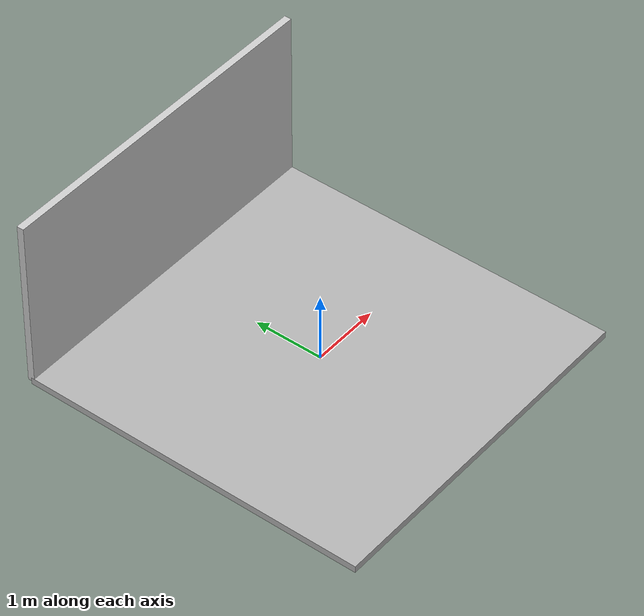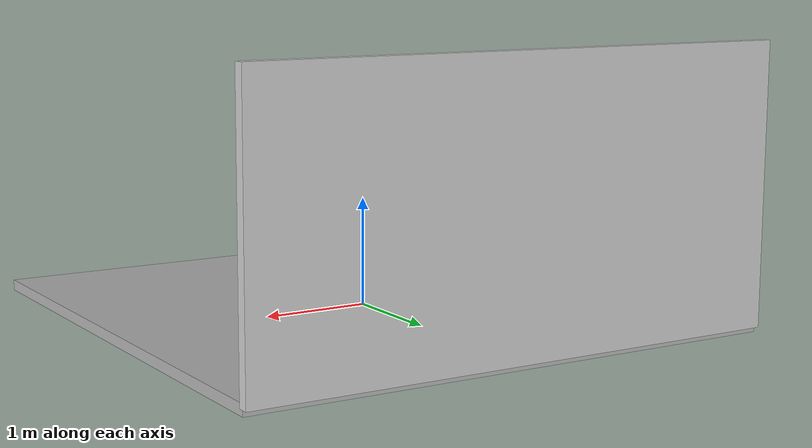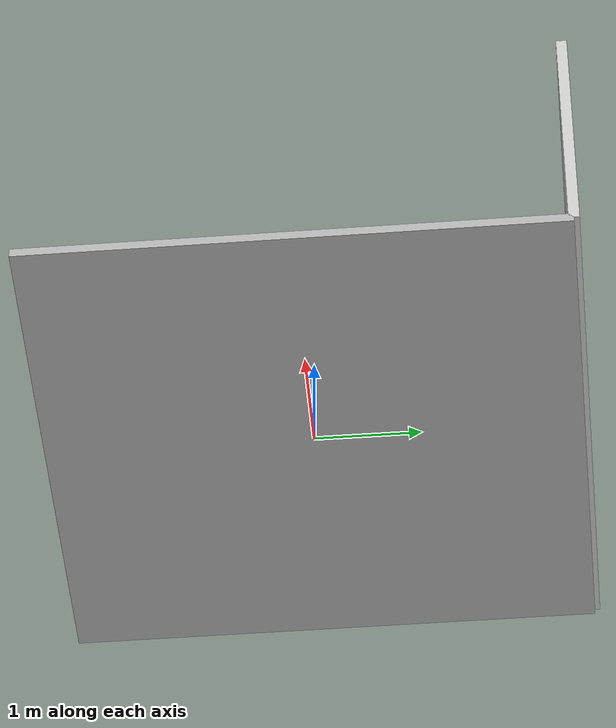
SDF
<?xml version="1.0" ?>
<sdf version="1.6">
  <model name="simple_room">
    <static>true</static>
    <!-- Sol -->
    <link name="floor">
      <collision name="floor_collision">
        <geometry>
          <box>
            <size>5 5 0.1</size>
          </box>
        </geometry>
      </collision>
      <visual name="floor_visual">
        <geometry>
          <box>
            <size>5 5 0.1</size>
          </box>
        </geometry>
        <material>
          <ambient>0.7 0.7 0.7 1</ambient>
        </material>
      </visual>
    </link>

    <!-- Mur avant -->
    <link name="wall_front">
      <collision name="wall_front_collision">
        <geometry>
          <box>
            <size>5 0.1 2.5</size>
          </box>
        </geometry>
        <pose>0 2.5 1.25 0 0 0</pose>
      </collision>
      <visual name="wall_front_visual">
        <geometry>
          <box>
            <size>5 0.1 2.5</size>
          </box>
        </geometry>
        <pose>0 2.5 1.25 0 0 0</pose>
        <material>
          <ambient>0.8 0.8 0.8 1</ambient>
        </material>
      </visual>
    </link>

    <!-- Ajoute les autres murs (arrière, côtés) de façon similaire -->

  </model>
</sdf>
